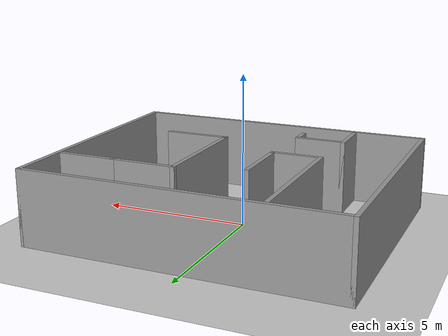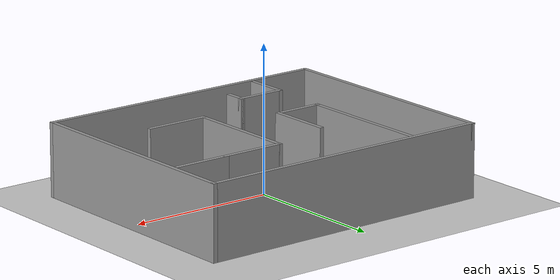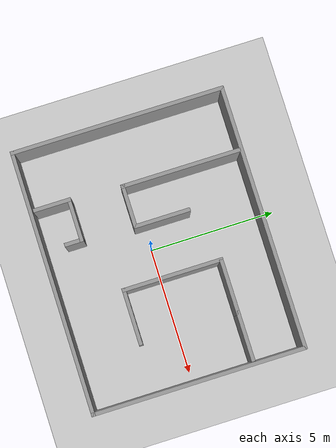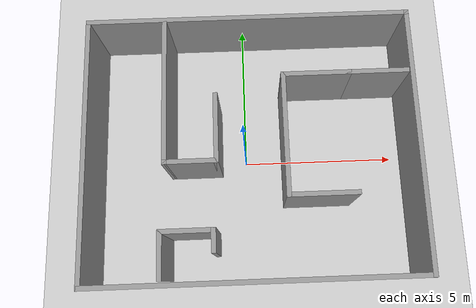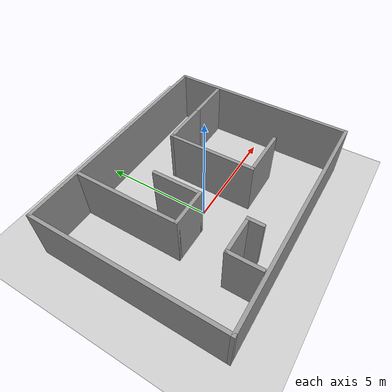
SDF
<sdf version="1.7">
 <world name="default">
  <light name="sun" type="directional">
   <pose>0 0 10 0 -0 0</pose>
   <diffuse>0.8 0.8 0.8 1</diffuse>
   <specular>0.2 0.2 0.2 1</specular>
   <attenuation>
    <range>1000</range>
    <constant>0.9</constant>
    <linear>0.01</linear>
    <quadratic>0.001</quadratic>
   </attenuation>
   <direction>-0.5 0.1 -0.9</direction>
   <spot><inner_angle>0</inner_angle><outer_angle>0</outer_angle><falloff>0</falloff></spot>
  </light>
  <model name="ground_plane">
   <static>1</static>
   <link name="link">
    <collision name="collision">
     <geometry><plane><normal>0 0 1</normal><size>100 100</size></plane></geometry>
     <surface>
      <contact><collide_bitmask>65535</collide_bitmask></contact>
      <friction><ode><mu>100</mu><mu2>50</mu2></ode></friction>
     </surface>
    </collision>
    <visual name="visual">
     <cast_shadows>0</cast_shadows>
     <geometry><plane><normal>0 0 1</normal><size>100 100</size></plane></geometry>
     <material>
      <script><uri>file://media/materials/scripts/gazebo.material</uri><name>Gazebo/Grey</name></script>
     </material>
    </visual>
   </link>
  </model>
  <gravity>0 0 -9.8</gravity>
  <magnetic_field>6e-06 2.3e-05 -4.2e-05</magnetic_field>
  <atmosphere type="adiabatic"/>
  <physics type="ode">
   <max_step_size>0.001</max_step_size>
   <real_time_factor>1</real_time_factor>
   <real_time_update_rate>1000</real_time_update_rate>
  </physics>
  <scene><ambient>0.4 0.4 0.4 1</ambient><background>0.7 0.7 0.7 1</background><shadows>1</shadows></scene>
  <spherical_coordinates>
   <surface_model>EARTH_WGS84</surface_model>
   <latitude_deg>0</latitude_deg>
   <longitude_deg>0</longitude_deg>
   <elevation>0</elevation>
   <heading_deg>0</heading_deg>
  </spherical_coordinates>
  <model name="test">
   <pose>0.225414 0.207604 0 0 -0 0</pose>
   <link name="Wall_12">
    <collision name="Wall_12_Collision">
     <geometry><box><size>10.5 0.15 2.5</size></box></geometry>
     <pose>0 0 1.25 0 -0 0</pose>
    </collision>
    <visual name="Wall_12_Visual">
     <pose>0 0 1.25 0 -0 0</pose>
     <geometry><box><size>10.5 0.15 2.5</size></box></geometry>
     <material>
      <script><uri>file://media/materials/scripts/gazebo.material</uri><name>Gazebo/Grey</name></script>
      <ambient>1 1 1 1</ambient>
     </material>
     <meta><layer>0</layer></meta>
    </visual>
    <pose>0 4.175 0 0 -0 0</pose>
   </link>
   <link name="Wall_13">
    <collision name="Wall_13_Collision">
     <geometry><box><size>8.5 0.15 2.5</size></box></geometry>
     <pose>0 0 1.25 0 -0 0</pose>
    </collision>
    <visual name="Wall_13_Visual">
     <pose>0 0 1.25 0 -0 0</pose>
     <geometry><box><size>8.5 0.15 2.5</size></box></geometry>
     <material>
      <script><uri>file://media/materials/scripts/gazebo.material</uri><name>Gazebo/Grey</name></script>
      <ambient>1 1 1 1</ambient>
     </material>
     <meta><layer>0</layer></meta>
    </visual>
    <pose>5.175 -0 0 0 -0 -1.5708</pose>
   </link>
   <link name="Wall_14">
    <collision name="Wall_14_Collision">
     <geometry><box><size>10.5 0.15 2.5</size></box></geometry>
     <pose>0 0 1.25 0 -0 0</pose>
    </collision>
    <visual name="Wall_14_Visual">
     <pose>0 0 1.25 0 -0 0</pose>
     <geometry><box><size>10.5 0.15 2.5</size></box></geometry>
     <material>
      <script><uri>file://media/materials/scripts/gazebo.material</uri><name>Gazebo/Grey</name></script>
      <ambient>1 1 1 1</ambient>
     </material>
     <meta><layer>0</layer></meta>
    </visual>
    <pose>0 -4.175 0 0 -0 3.14159</pose>
   </link>
   <link name="Wall_15">
    <collision name="Wall_15_Collision">
     <geometry><box><size>8.5 0.15 2.5</size></box></geometry>
     <pose>0 0 1.25 0 -0 0</pose>
    </collision>
    <visual name="Wall_15_Visual">
     <pose>0 0 1.25 0 -0 0</pose>
     <geometry><box><size>8.5 0.15 2.5</size></box></geometry>
     <material>
      <script><uri>file://media/materials/scripts/gazebo.material</uri><name>Gazebo/Grey</name></script>
      <ambient>1 1 1 1</ambient>
     </material>
     <meta><layer>0</layer></meta>
    </visual>
    <pose>-5.175 -0 0 0 -0 1.5708</pose>
   </link>
   <link name="Wall_17">
    <collision name="Wall_17_Collision">
     <geometry><box><size>4.75 0.15 2.5</size></box></geometry>
     <pose>0 0 1.25 0 -0 0</pose>
    </collision>
    <visual name="Wall_17_Visual">
     <pose>0 0 1.25 0 -0 0</pose>
     <geometry><box><size>4.75 0.15 2.5</size></box></geometry>
     <material>
      <script><uri>file://media/materials/scripts/gazebo.material</uri><name>Gazebo/Grey</name></script>
      <ambient>1 1 1 1</ambient>
     </material>
     <meta><layer>0</layer></meta>
    </visual>
    <pose>-2.71118 1.75333 0 0 -0 -1.5708</pose>
   </link>
   <link name="Wall_18">
    <collision name="Wall_18_Collision">
     <geometry><box><size>1.75 0.15 2.5</size></box></geometry>
     <pose>0 0 1.25 0 -0 0</pose>
    </collision>
    <visual name="Wall_18_Visual">
     <pose>0 0 1.25 0 -0 0</pose>
     <geometry><box><size>1.75 0.15 2.5</size></box></geometry>
     <material>
      <script><uri>file://media/materials/scripts/gazebo.material</uri><name>Gazebo/Grey</name></script>
      <ambient>1 1 1 1</ambient>
     </material>
     <meta><layer>0</layer></meta>
    </visual>
    <pose>-1.91118 -0.54667 0 0 -0 0</pose>
   </link>
   <link name="Wall_20">
    <collision name="Wall_20_Collision">
     <geometry><box><size>2 0.15 2.5</size></box></geometry>
     <pose>0 0 1.25 0 -0 0</pose>
    </collision>
    <visual name="Wall_20_Visual">
     <pose>0 0 1.25 0 -0 0</pose>
     <geometry><box><size>2 0.15 2.5</size></box></geometry>
     <material>
      <script><uri>file://media/materials/scripts/gazebo.material</uri><name>Gazebo/Grey</name></script>
      <ambient>1 1 1 1</ambient>
     </material>
     <meta><layer>0</layer></meta>
    </visual>
    <pose>4.08439 2.16744 0 0 -0 0</pose>
   </link>
   <link name="Wall_22">
    <collision name="Wall_22_Collision">
     <geometry><box><size>2.25 0.15 2.5</size></box></geometry>
     <pose>0 0 1.25 0 -0 0</pose>
    </collision>
    <visual name="Wall_22_Visual">
     <pose>0 0 1.25 0 -0 0</pose>
     <geometry><box><size>2.25 0.15 2.5</size></box></geometry>
     <material>
      <script><uri>file://media/materials/scripts/gazebo.material</uri><name>Gazebo/Grey</name></script>
      <ambient>1 1 1 1</ambient>
     </material>
     <meta><layer>0</layer></meta>
    </visual>
    <pose>2.1094 2.16744 0 0 -0 3.14159</pose>
   </link>
   <link name="Wall_23">
    <collision name="Wall_23_Collision">
     <geometry><box><size>4 0.15 2.5</size></box></geometry>
     <pose>0 0 1.25 0 -0 0</pose>
    </collision>
    <visual name="Wall_23_Visual">
     <pose>0 0 1.25 0 -0 0</pose>
     <geometry><box><size>4 0.15 2.5</size></box></geometry>
     <material>
      <script><uri>file://media/materials/scripts/gazebo.material</uri><name>Gazebo/Grey</name></script>
      <ambient>1 1 1 1</ambient>
     </material>
     <meta><layer>0</layer></meta>
    </visual>
    <pose>1.0594 0.242445 0 0 -0 -1.5708</pose>
   </link>
   <link name="Wall_24">
    <collision name="Wall_24_Collision">
     <geometry><box><size>2.25 0.15 2.5</size></box></geometry>
     <pose>0 0 1.25 0 -0 0</pose>
    </collision>
    <visual name="Wall_24_Visual">
     <pose>0 0 1.25 0 -0 0</pose>
     <geometry><box><size>2.25 0.15 2.5</size></box></geometry>
     <material>
      <script><uri>file://media/materials/scripts/gazebo.material</uri><name>Gazebo/Grey</name></script>
      <ambient>1 1 1 1</ambient>
     </material>
     <meta><layer>0</layer></meta>
    </visual>
    <pose>2.1094 -1.68256 0 0 -0 0</pose>
   </link>
   <link name="Wall_26">
    <collision name="Wall_26_Collision">
     <geometry><box><size>2.25 0.15 2.5</size></box></geometry>
     <pose>0 0 1.25 0 -0 0</pose>
    </collision>
    <visual name="Wall_26_Visual">
     <pose>0 0 1.25 0 -0 0</pose>
     <geometry><box><size>2.25 0.15 2.5</size></box></geometry>
     <material>
      <script><uri>file://media/materials/scripts/gazebo.material</uri><name>Gazebo/Grey</name></script>
      <ambient>1 1 1 1</ambient>
     </material>
     <meta><layer>0</layer></meta>
    </visual>
    <pose>-1.11118 0.50333 0 0 -0 1.5708</pose>
   </link>
   <link name="Wall_28">
    <collision name="Wall_28_Collision">
     <geometry><box><size>1.5 0.15 2.5</size></box></geometry>
     <pose>0 0 1.25 0 -0 0</pose>
    </collision>
    <visual name="Wall_28_Visual">
     <pose>0 0 1.25 0 -0 0</pose>
     <geometry><box><size>1.5 0.15 2.5</size></box></geometry>
     <material>
      <script><uri>file://media/materials/scripts/gazebo.material</uri><name>Gazebo/Grey</name></script>
      <ambient>1 1 1 1</ambient>
     </material>
     <meta><layer>0</layer></meta>
    </visual>
    <pose>-2.83285 -3.3171 0 0 -0 1.5708</pose>
   </link>
   <link name="Wall_29">
    <collision name="Wall_29_Collision">
     <geometry><box><size>1.75 0.15 2.5</size></box></geometry>
     <pose>0 0 1.25 0 -0 0</pose>
    </collision>
    <visual name="Wall_29_Visual">
     <pose>0 0 1.25 0 -0 0</pose>
     <geometry><box><size>1.75 0.15 2.5</size></box></geometry>
     <material>
      <script><uri>file://media/materials/scripts/gazebo.material</uri><name>Gazebo/Grey</name></script>
      <ambient>1 1 1 1</ambient>
     </material>
     <meta><layer>0</layer></meta>
    </visual>
    <pose>-2.03285 -2.6421 0 0 -0 0</pose>
   </link>
   <link name="Wall_30">
    <collision name="Wall_30_Collision">
     <geometry><box><size>0.75 0.15 2.5</size></box></geometry>
     <pose>0 0 1.25 0 -0 0</pose>
    </collision>
    <visual name="Wall_30_Visual">
     <pose>0 0 1.25 0 -0 0</pose>
     <geometry><box><size>0.75 0.15 2.5</size></box></geometry>
     <material>
      <script><uri>file://media/materials/scripts/gazebo.material</uri><name>Gazebo/Grey</name></script>
      <ambient>1 1 1 1</ambient>
     </material>
     <meta><layer>0</layer></meta>
    </visual>
    <pose>-1.23285 -2.9421 0 0 -0 -1.5708</pose>
   </link>
   <static>1</static>
  </model>
 </world>
</sdf>
